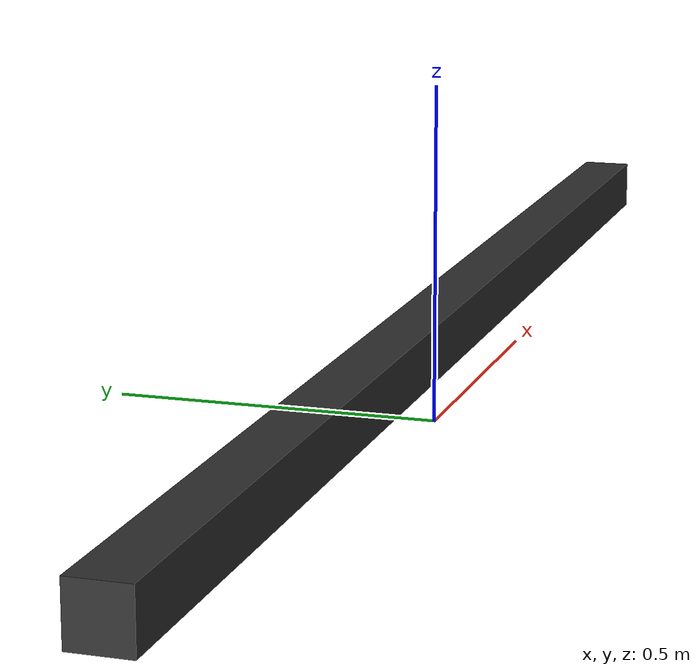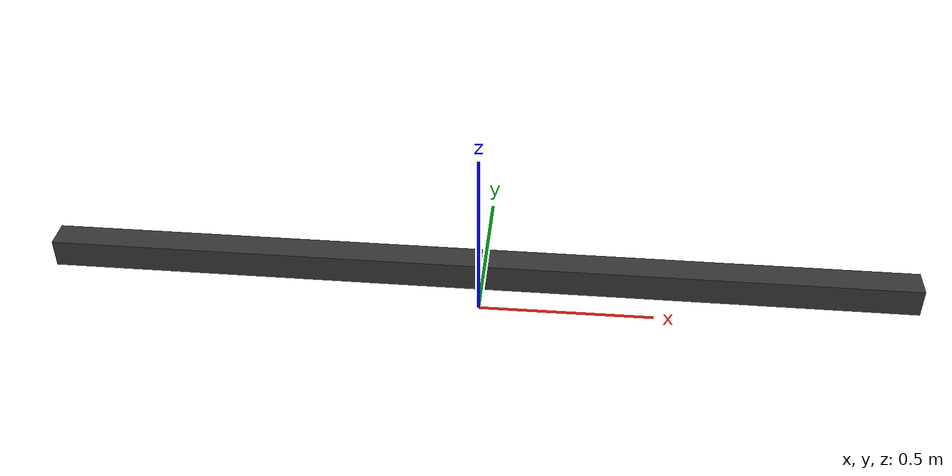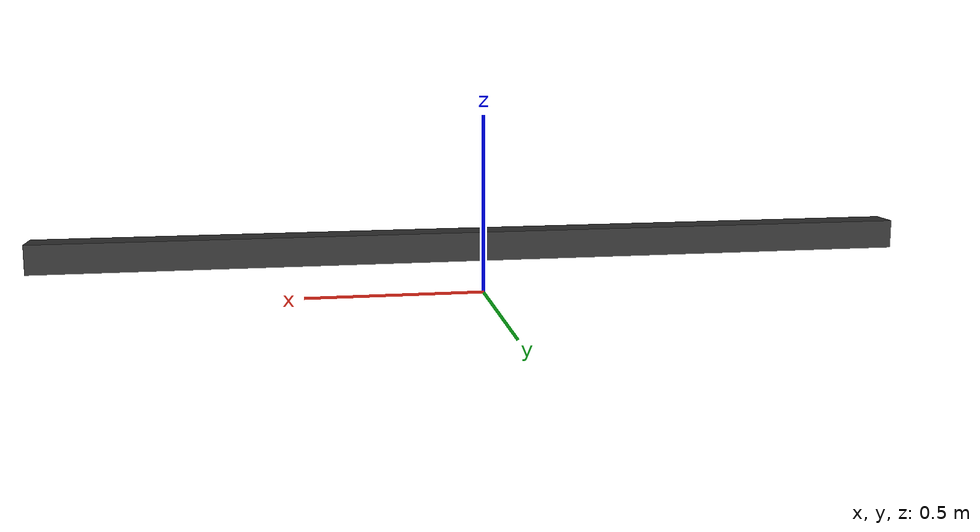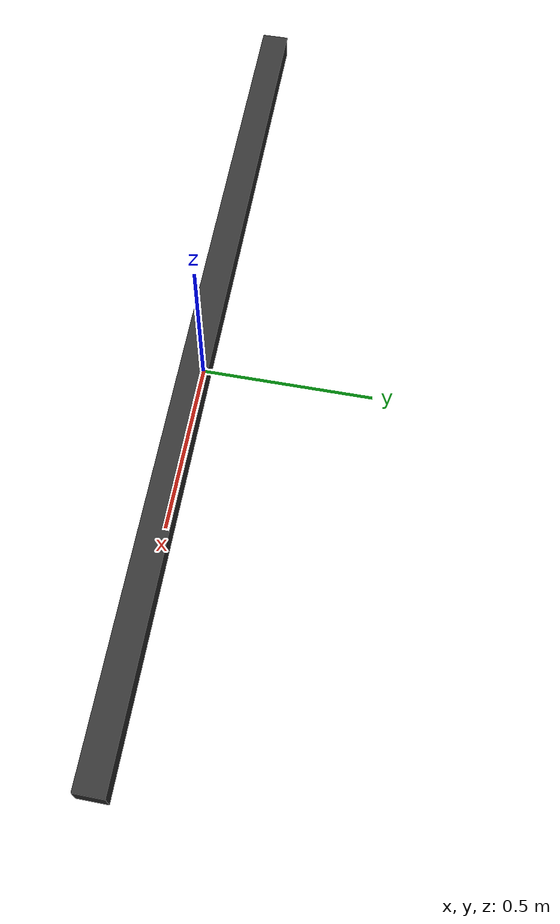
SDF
<sdf version="1.6">
    <model name="gantry">
        <allow_auto_disable>true</allow_auto_disable>
        <link name="link">
            <kinematic>true</kinematic>
            <pose>0 0 0.14 0 0 0 0</pose>
            <visual name="visual">
                <geometry>
                    <box>
                        <size>2.43 0.08 0.08</size>
                    </box>
                </geometry>
                <material>
                    <ambient>0.2 0.2 0.2 1.0</ambient>
                    <diffuse>0.2 0.2 0.2 1.0</diffuse>
                </material>
            </visual>
            <collision name="box_collision">
                <geometry>
                    <box>
                        <size>2.43 0.08 0.08</size>
                    </box>
                </geometry>
            </collision>
        </link>
    </model>
</sdf>
